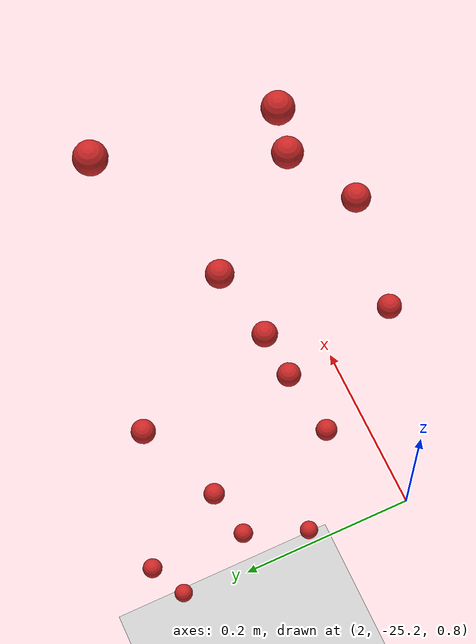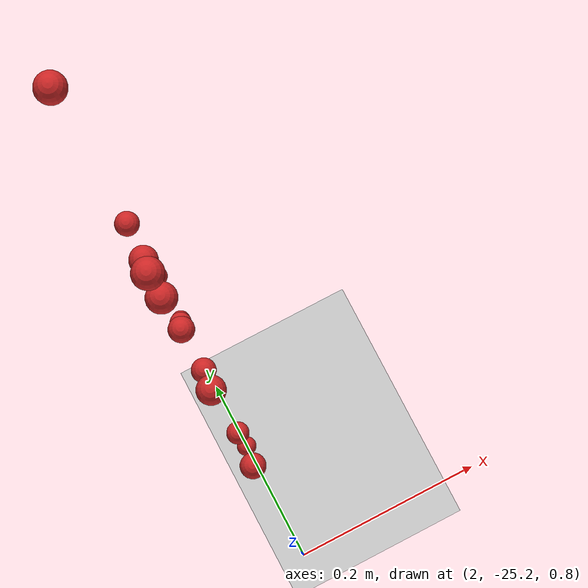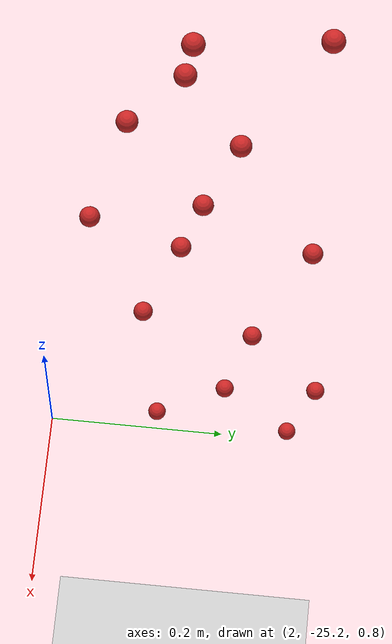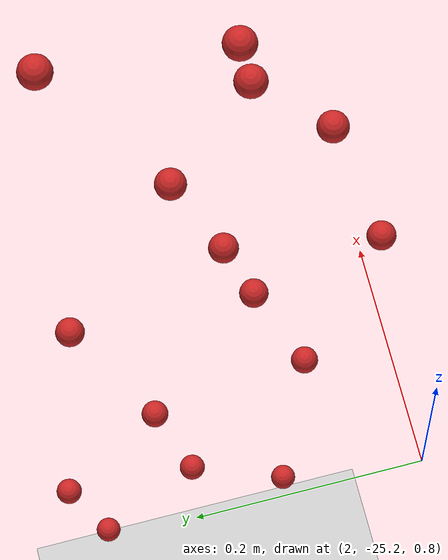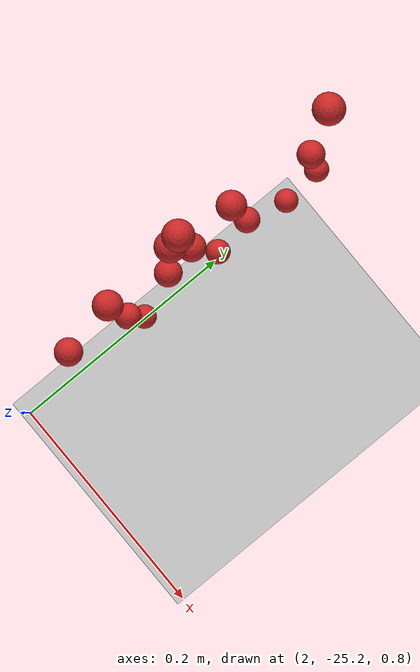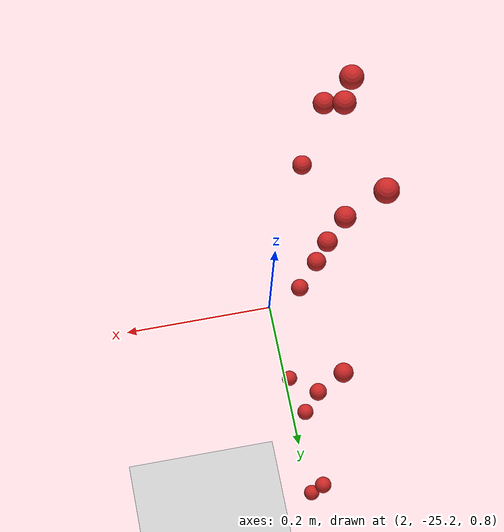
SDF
<sdf version="1.4">
 <world name="default">
  <model name="ground_plane">
   <static>1</static>
   <link name="link">
    <collision name="collision">
     <geometry><plane><normal>0 0 1</normal><size>100 100</size></plane></geometry>
     <surface><friction><ode><mu>100</mu><mu2>50</mu2></ode></friction></surface>
    </collision>
    <visual name="visual">
     <cast_shadows>0</cast_shadows>
     <geometry><plane><normal>0 0 1</normal><size>100 100</size></plane></geometry>
     <material>
      <script><uri>file://media/materials/scripts/gazebo.material</uri><name>Gazebo/Grey</name></script>
     </material>
    </visual>
    <velocity_decay><linear>0</linear><angular>0</angular></velocity_decay>
   </link>
  </model>
  <model name="apple620">
   <link name="my_apple">
    <inertial>
     <pose>2 0 0 0 -0 0</pose>
     <mass>1</mass>
     <inertia><ixx>1</ixx><ixy>0</ixy><ixz>0</ixz><iyy>1</iyy><iyz>0</iyz><izz>1</izz></inertia>
    </inertial>
    <collision name="my_apple_collision">
     <pose>2 0 1 0 -0 0</pose>
     <geometry><sphere><radius>0.01</radius></sphere></geometry>
    </collision>
    <visual name="my_apple_visual">
     <pose>2 0 1 0 -0 0</pose>
     <geometry><sphere><radius>0.01</radius></sphere></geometry>
     <material><script><name>Gazebo/Red</name><uri>__default__</uri></script></material>
    </visual>
    <gravity>0</gravity>
    <velocity_decay><linear>0</linear><angular>0</angular></velocity_decay>
   </link>
   <pose>0 -25.0971 0.578062 0 -0 0</pose>
   <static>0</static>
  </model>
  <model name="apple621">
   <link name="my_apple">
    <inertial>
     <pose>2 0 0 0 -0 0</pose>
     <mass>1</mass>
     <inertia><ixx>1</ixx><ixy>0</ixy><ixz>0</ixz><iyy>1</iyy><iyz>0</iyz><izz>1</izz></inertia>
    </inertial>
    <collision name="my_apple_collision">
     <pose>2 0 1 0 -0 0</pose>
     <geometry><sphere><radius>0.01</radius></sphere></geometry>
    </collision>
    <visual name="my_apple_visual">
     <pose>2 0 1 0 -0 0</pose>
     <geometry><sphere><radius>0.01</radius></sphere></geometry>
     <material><script><name>Gazebo/Red</name><uri>__default__</uri></script></material>
    </visual>
    <gravity>0</gravity>
    <velocity_decay><linear>0</linear><angular>0</angular></velocity_decay>
   </link>
   <pose>0 -25.0756 -0.141511 0 -0 0</pose>
   <static>0</static>
  </model>
  <model name="apple622">
   <link name="my_apple">
    <inertial>
     <pose>2 0 0 0 -0 0</pose>
     <mass>1</mass>
     <inertia><ixx>1</ixx><ixy>0</ixy><ixz>0</ixz><iyy>1</iyy><iyz>0</iyz><izz>1</izz></inertia>
    </inertial>
    <collision name="my_apple_collision">
     <pose>2 0 1 0 -0 0</pose>
     <geometry><sphere><radius>0.01</radius></sphere></geometry>
    </collision>
    <visual name="my_apple_visual">
     <pose>2 0 1 0 -0 0</pose>
     <geometry><sphere><radius>0.01</radius></sphere></geometry>
     <material><script><name>Gazebo/Red</name><uri>__default__</uri></script></material>
    </visual>
    <gravity>0</gravity>
    <velocity_decay><linear>0</linear><angular>0</angular></velocity_decay>
   </link>
   <pose>0 -25.0462 0.671686 0 -0 0</pose>
   <static>0</static>
  </model>
  <model name="apple623">
   <link name="my_apple">
    <inertial>
     <pose>2 0 0 0 -0 0</pose>
     <mass>1</mass>
     <inertia><ixx>1</ixx><ixy>0</ixy><ixz>0</ixz><iyy>1</iyy><iyz>0</iyz><izz>1</izz></inertia>
    </inertial>
    <collision name="my_apple_collision">
     <pose>2 0 1 0 -0 0</pose>
     <geometry><sphere><radius>0.01</radius></sphere></geometry>
    </collision>
    <visual name="my_apple_visual">
     <pose>2 0 1 0 -0 0</pose>
     <geometry><sphere><radius>0.01</radius></sphere></geometry>
     <material><script><name>Gazebo/Red</name><uri>__default__</uri></script></material>
    </visual>
    <gravity>0</gravity>
    <velocity_decay><linear>0</linear><angular>0</angular></velocity_decay>
   </link>
   <pose>0 -25.0881 0.152738 0 -0 0</pose>
   <static>0</static>
  </model>
  <model name="apple624">
   <link name="my_apple">
    <inertial>
     <pose>2 0 0 0 -0 0</pose>
     <mass>1</mass>
     <inertia><ixx>1</ixx><ixy>0</ixy><ixz>0</ixz><iyy>1</iyy><iyz>0</iyz><izz>1</izz></inertia>
    </inertial>
    <collision name="my_apple_collision">
     <pose>2 0 1 0 -0 0</pose>
     <geometry><sphere><radius>0.01</radius></sphere></geometry>
    </collision>
    <visual name="my_apple_visual">
     <pose>2 0 1 0 -0 0</pose>
     <geometry><sphere><radius>0.01</radius></sphere></geometry>
     <material><script><name>Gazebo/Red</name><uri>__default__</uri></script></material>
    </visual>
    <gravity>0</gravity>
    <velocity_decay><linear>0</linear><angular>0</angular></velocity_decay>
   </link>
   <pose>0 -25.0283 0.42202 0 -0 0</pose>
   <static>0</static>
  </model>
  <model name="apple625">
   <link name="my_apple">
    <inertial>
     <pose>2 0 0 0 -0 0</pose>
     <mass>1</mass>
     <inertia><ixx>1</ixx><ixy>0</ixy><ixz>0</ixz><iyy>1</iyy><iyz>0</iyz><izz>1</izz></inertia>
    </inertial>
    <collision name="my_apple_collision">
     <pose>2 0 1 0 -0 0</pose>
     <geometry><sphere><radius>0.01</radius></sphere></geometry>
    </collision>
    <visual name="my_apple_visual">
     <pose>2 0 1 0 -0 0</pose>
     <geometry><sphere><radius>0.01</radius></sphere></geometry>
     <material><script><name>Gazebo/Red</name><uri>__default__</uri></script></material>
    </visual>
    <gravity>0</gravity>
    <velocity_decay><linear>0</linear><angular>0</angular></velocity_decay>
   </link>
   <pose>0 -25.0399 0.725186 0 -0 0</pose>
   <static>0</static>
  </model>
  <model name="apple627">
   <link name="my_apple">
    <inertial>
     <pose>2 0 0 0 -0 0</pose>
     <mass>1</mass>
     <inertia><ixx>1</ixx><ixy>0</ixy><ixz>0</ixz><iyy>1</iyy><iyz>0</iyz><izz>1</izz></inertia>
    </inertial>
    <collision name="my_apple_collision">
     <pose>2 0 1 0 -0 0</pose>
     <geometry><sphere><radius>0.01</radius></sphere></geometry>
    </collision>
    <visual name="my_apple_visual">
     <pose>2 0 1 0 -0 0</pose>
     <geometry><sphere><radius>0.01</radius></sphere></geometry>
     <material><script><name>Gazebo/Red</name><uri>__default__</uri></script></material>
    </visual>
    <gravity>0</gravity>
    <velocity_decay><linear>0</linear><angular>0</angular></velocity_decay>
   </link>
   <pose>0 -25.0489 0.323044 0 -0 0</pose>
   <static>0</static>
  </model>
  <model name="apple629">
   <link name="my_apple">
    <inertial>
     <pose>2 0 0 0 -0 0</pose>
     <mass>1</mass>
     <inertia><ixx>1</ixx><ixy>0</ixy><ixz>0</ixz><iyy>1</iyy><iyz>0</iyz><izz>1</izz></inertia>
    </inertial>
    <collision name="my_apple_collision">
     <pose>2 0 1 0 -0 0</pose>
     <geometry><sphere><radius>0.01</radius></sphere></geometry>
    </collision>
    <visual name="my_apple_visual">
     <pose>2 0 1 0 -0 0</pose>
     <geometry><sphere><radius>0.01</radius></sphere></geometry>
     <material><script><name>Gazebo/Red</name><uri>__default__</uri></script></material>
    </visual>
    <gravity>0</gravity>
    <velocity_decay><linear>0</linear><angular>0</angular></velocity_decay>
   </link>
   <pose>0 -24.9989 -0.047763 0 -0 0</pose>
   <static>0</static>
  </model>
  <model name="apple630">
   <link name="my_apple">
    <inertial>
     <pose>2 0 0 0 -0 0</pose>
     <mass>1</mass>
     <inertia><ixx>1</ixx><ixy>0</ixy><ixz>0</ixz><iyy>1</iyy><iyz>0</iyz><izz>1</izz></inertia>
    </inertial>
    <collision name="my_apple_collision">
     <pose>2 0 1 0 -0 0</pose>
     <geometry><sphere><radius>0.01</radius></sphere></geometry>
    </collision>
    <visual name="my_apple_visual">
     <pose>2 0 1 0 -0 0</pose>
     <geometry><sphere><radius>0.01</radius></sphere></geometry>
     <material><script><name>Gazebo/Red</name><uri>__default__</uri></script></material>
    </visual>
    <gravity>0</gravity>
    <velocity_decay><linear>0</linear><angular>0</angular></velocity_decay>
   </link>
   <pose>0 -24.9962 0.55033 0 -0 0</pose>
   <static>0</static>
  </model>
  <model name="apple632">
   <link name="my_apple">
    <inertial>
     <pose>2 0 0 0 -0 0</pose>
     <mass>1</mass>
     <inertia><ixx>1</ixx><ixy>0</ixy><ixz>0</ixz><iyy>1</iyy><iyz>0</iyz><izz>1</izz></inertia>
    </inertial>
    <collision name="my_apple_collision">
     <pose>2 0 1 0 -0 0</pose>
     <geometry><sphere><radius>0.01</radius></sphere></geometry>
    </collision>
    <visual name="my_apple_visual">
     <pose>2 0 1 0 -0 0</pose>
     <geometry><sphere><radius>0.01</radius></sphere></geometry>
     <material><script><name>Gazebo/Red</name><uri>__default__</uri></script></material>
    </visual>
    <gravity>0</gravity>
    <velocity_decay><linear>0</linear><angular>0</angular></velocity_decay>
   </link>
   <pose>0 -24.9241 -0.167373 0 -0 0</pose>
   <static>0</static>
  </model>
  <model name="apple634">
   <link name="my_apple">
    <inertial>
     <pose>2 0 0 0 -0 0</pose>
     <mass>1</mass>
     <inertia><ixx>1</ixx><ixy>0</ixy><ixz>0</ixz><iyy>1</iyy><iyz>0</iyz><izz>1</izz></inertia>
    </inertial>
    <collision name="my_apple_collision">
     <pose>2 0 1 0 -0 0</pose>
     <geometry><sphere><radius>0.01</radius></sphere></geometry>
    </collision>
    <visual name="my_apple_visual">
     <pose>2 0 1 0 -0 0</pose>
     <geometry><sphere><radius>0.01</radius></sphere></geometry>
     <material><script><name>Gazebo/Red</name><uri>__default__</uri></script></material>
    </visual>
    <gravity>0</gravity>
    <velocity_decay><linear>0</linear><angular>0</angular></velocity_decay>
   </link>
   <pose>0 -24.9209 0.335282 0 -0 0</pose>
   <static>0</static>
  </model>
  <model name="apple647">
   <link name="my_apple">
    <inertial>
     <pose>2 0 0 0 -0 0</pose>
     <mass>1</mass>
     <inertia><ixx>1</ixx><ixy>0</ixy><ixz>0</ixz><iyy>1</iyy><iyz>0</iyz><izz>1</izz></inertia>
    </inertial>
    <collision name="my_apple_collision">
     <pose>2 0 1 0 -0 0</pose>
     <geometry><sphere><radius>0.01</radius></sphere></geometry>
    </collision>
    <visual name="my_apple_visual">
     <pose>2 0 1 0 -0 0</pose>
     <geometry><sphere><radius>0.01</radius></sphere></geometry>
     <material><script><name>Gazebo/Red</name><uri>__default__</uri></script></material>
    </visual>
    <gravity>0</gravity>
    <velocity_decay><linear>0</linear><angular>0</angular></velocity_decay>
   </link>
   <pose>0 -25.1367 0.37387 0 -0 0</pose>
   <static>0</static>
  </model>
  <model name="apple655">
   <link name="my_apple">
    <inertial>
     <pose>2 0 0 0 -0 0</pose>
     <mass>1</mass>
     <inertia><ixx>1</ixx><ixy>0</ixy><ixz>0</ixz><iyy>1</iyy><iyz>0</iyz><izz>1</izz></inertia>
    </inertial>
    <collision name="my_apple_collision">
     <pose>2 0 1 0 -0 0</pose>
     <geometry><sphere><radius>0.01</radius></sphere></geometry>
    </collision>
    <visual name="my_apple_visual">
     <pose>2 0 1 0 -0 0</pose>
     <geometry><sphere><radius>0.01</radius></sphere></geometry>
     <material><script><name>Gazebo/Red</name><uri>__default__</uri></script></material>
    </visual>
    <gravity>0</gravity>
    <velocity_decay><linear>0</linear><angular>0</angular></velocity_decay>
   </link>
   <pose>0 -24.973 0.113277 0 -0 0</pose>
   <static>0</static>
  </model>
  <model name="apple661">
   <link name="my_apple">
    <inertial>
     <pose>2 0 0 0 -0 0</pose>
     <mass>1</mass>
     <inertia><ixx>1</ixx><ixy>0</ixy><ixz>0</ixz><iyy>1</iyy><iyz>0</iyz><izz>1</izz></inertia>
    </inertial>
    <collision name="my_apple_collision">
     <pose>2 0 1 0 -0 0</pose>
     <geometry><sphere><radius>0.01</radius></sphere></geometry>
    </collision>
    <visual name="my_apple_visual">
     <pose>2 0 1 0 -0 0</pose>
     <geometry><sphere><radius>0.01</radius></sphere></geometry>
     <material><script><name>Gazebo/Red</name><uri>__default__</uri></script></material>
    </visual>
    <gravity>0</gravity>
    <velocity_decay><linear>0</linear><angular>0</angular></velocity_decay>
   </link>
   <pose>0 -24.9266 0.750581 0 -0 0</pose>
   <static>0</static>
  </model>
  <model name="apple667">
   <link name="my_apple">
    <inertial>
     <pose>2 0 0 0 -0 0</pose>
     <mass>1</mass>
     <inertia><ixx>1</ixx><ixy>0</ixy><ixz>0</ixz><iyy>1</iyy><iyz>0</iyz><izz>1</izz></inertia>
    </inertial>
    <collision name="my_apple_collision">
     <pose>2 0 1 0 -0 0</pose>
     <geometry><sphere><radius>0.01</radius></sphere></geometry>
    </collision>
    <visual name="my_apple_visual">
     <pose>2 0 1 0 -0 0</pose>
     <geometry><sphere><radius>0.01</radius></sphere></geometry>
     <material><script><name>Gazebo/Red</name><uri>__default__</uri></script></material>
    </visual>
    <gravity>0</gravity>
    <velocity_decay><linear>0</linear><angular>0</angular></velocity_decay>
   </link>
   <pose>0 -24.8984 -0.029296 0 -0 0</pose>
   <static>0</static>
  </model>
 </world>
</sdf>
